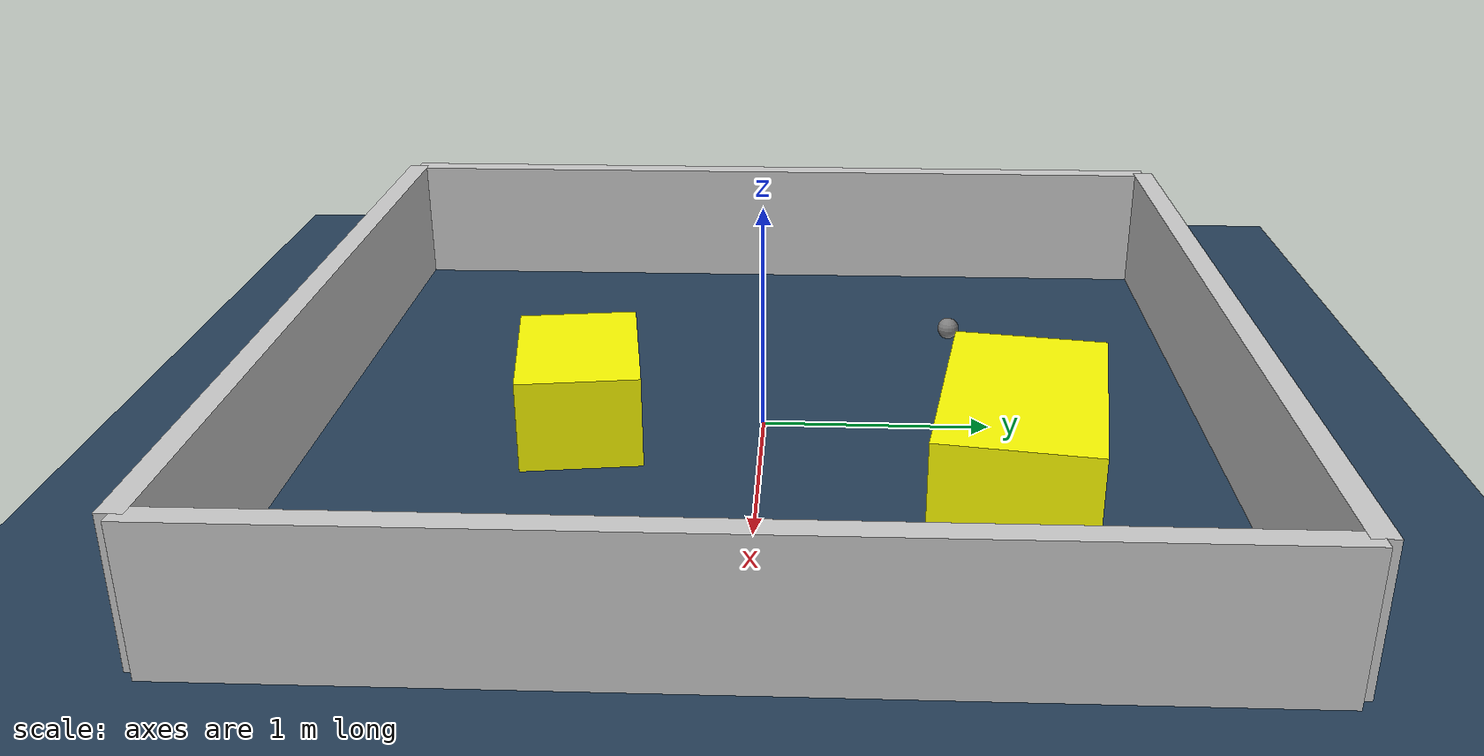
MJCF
<?xml version="1.0" ?>
<mujoco model="generated_environment">
  <option timestep="0.01" integrator="RK4" cone="elliptic"/>
  <default>
    <geom density="1"/>
  </default>
  <asset>
    <texture builtin="gradient" height="3072" rgb1="0.3 0.5 0.7" rgb2="0 0 0" type="skybox" width="512"/>
    <texture builtin="checker" height="300" mark="edge" markrgb="0.8 0.8 0.8" name="groundplane" rgb1="0.2 0.3 0.4" rgb2="0.1 0.2 0.3" type="2d" width="300"/>
    <material name="groundplane" reflectance="0.2" texrepeat="5 5" texture="groundplane" texuniform="true"/>
    <material name="robot" rgba="0.0 1.0 0.0 1"/>
  </asset>
  <worldbody>
    <light dir="0 0 -1" directional="true" pos="0 0 1.5"/>
    <geom condim="4" friction="1.0 0.005 0.001" material="groundplane" name="floor" size="0 0 0.05" type="plane"/>
    <body name="walls">
      <geom name="wall_1" condim="4" pos="-2.0 0.0 0.3" rgba="0.800000011920929 0.800000011920929 0.800000011920929 1.0" size="0.05 2.0 0.3" type="box"/>
      <geom name="wall_2" condim="4" pos="2.0 0.0 0.3" rgba="0.800000011920929 0.800000011920929 0.800000011920929 1.0" size="0.05 2.0 0.3" type="box"/>
      <geom name="wall_3" condim="4" pos="0.0 -2.0 0.3" rgba="0.800000011920929 0.800000011920929 0.800000011920929 1.0" size="2.0 0.05 0.3" type="box"/>
      <geom name="wall_4" condim="4" pos="0.0 2.0 0.3" rgba="0.800000011920929 0.800000011920929 0.800000011920929 1.0" size="2.0 0.05 0.3" type="box"/>
    </body>
    <body name="robot">
      <joint name="joint_x" type="slide" pos="0 0 0" axis="1 0 0"/>
      <joint name="joint_y" type="slide" pos="0 0 0" axis="0 1 0"/>
      <geom name="robot" type="sphere" pos="-0.6760743080314564 0.8629189155064121 0.2" size="0.05" mass="5." friction="1.0 0.005 0.0001" condim="4"/>
      <site name="sensor_ball"/>
    </body>
    <body name="obstacle_1_movable">
      <geom name="obstacle_1_movable" condim="4" pos="0.0929309407588279 -0.802890845701709 0.2" euler="0 0 8.233820289675284" friction="1.0 0.005 0.001" rgba="1 1 0 1" size="0.3864930012561422 0.2615028299192387 0.2" type="box" mass="0.1"/>
      <joint type="free"/>
    </body>
    <body name="obstacle_2_movable">
      <geom name="obstacle_2_movable" condim="4" pos="0.47184831479418854 1.0857037926575852 0.2" euler="0 0 170.72824062771167" friction="1.0 0.005 0.001" rgba="1 1 0 1" size="0.5730553950911375 0.33223063831844457 0.2" type="box" mass="0.1"/>
      <joint type="free"/>
    </body>
  </worldbody>
  <actuator>
    <motor name="actuator_x" joint="joint_x" gear="1" ctrlrange="-1 1"/>
    <motor name="actuator_y" joint="joint_y" gear="1" ctrlrange="-1 1"/>
  </actuator>
</mujoco>
